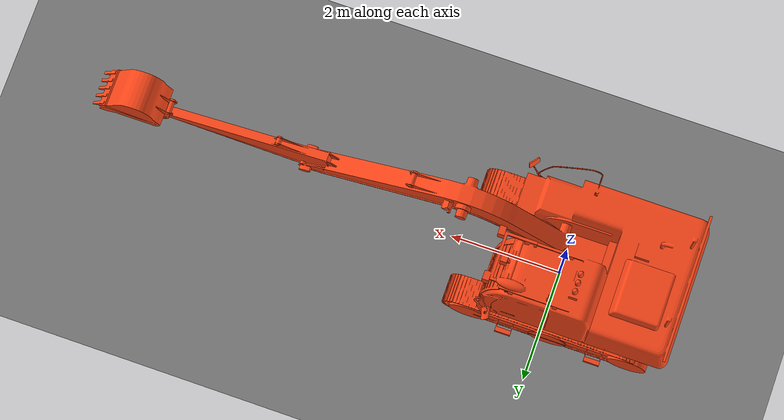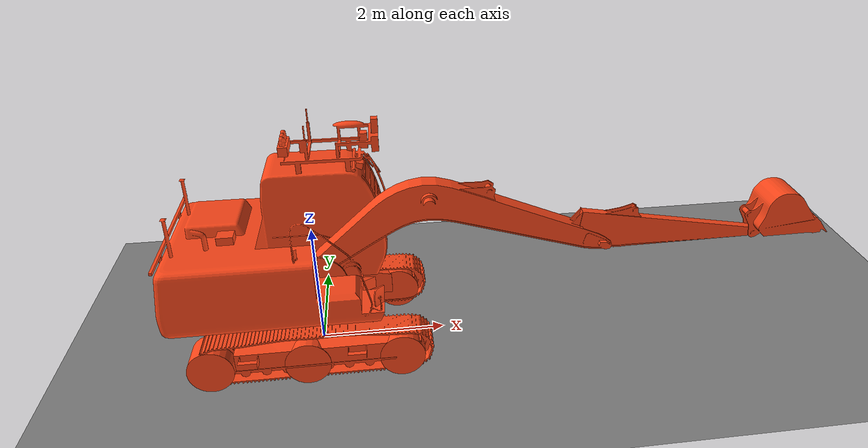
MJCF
<mujoco model="zx120">
  <default>
    <default class="robot">
      <default class="visual">
        <geom material="visualgeom" contype="0" conaffinity="0" group="2" />
      </default>
      <default class="collision">
        <geom material="collision_material" condim="3" contype="0" conaffinity="1" priority="1" group="1" solref="0.005 1" friction="1 0.01 0.01" />
        <equality solimp="0.99 0.999 1e-05" solref="0.005 1" />
      </default>
    </default>
  </default>

  <compiler angle="radian" />
  <option gravity="0 0 -0.0981" />

  <asset>
    <material name="default_material" rgba="0.7 0.7 0.7 1" />
    <material name="collision_material" rgba="1.0 0.28 0.1 0.9" />
    <mesh name="zx120-crawler" file="./zx120_description/meshes/zx120-crawler.stl" />
    <mesh name="zx120-body" file="./zx120_description/meshes/zx120-body.stl" />
    <mesh name="zx120-boom" file="./zx120_description/meshes/zx120-boom.stl" />
    <mesh name="zx120-arm" file="./zx120_description/meshes/zx120-arm.stl" />
    <mesh name="zx120-bucket" file="./zx120_description/meshes/zx120-bucket.stl" />
  </asset>

  <worldbody>
    <light pos="0 0 15"/>
    <geom name="ground" type="plane" size="50 50 0.1"/>
    <body name="base_link" pos="0.00000000 0.00000000 0.00000000" quat="1 0 0 0" childclass="robot">
      <freejoint />
      <body name="track_link" pos="0 0 0.1" quat="1.0 0.0 0.0 0.0">
        <inertial pos="-0.155869 0 0.358402" quat="1.0 0.0 0.0 0.0" mass="1" diaginertia="1.0 1.0 1.0" />
        <geom name="track_link_collision" pos="0 0 0" quat="1 0 0 0" type="mesh" mesh="zx120-crawler" class="collision" />
        <geom name="track_link_visual" pos="0 0 0" quat="1 0 0 0" material="default_material" type="mesh" mesh="zx120-crawler" class="visual" />
        <body name="body_link" pos="0 0 1" quat="1.0 0.0 0.0 0.0">
          <joint name="swing_joint" type="hinge" ref="0.0" axis="0 0 2" />
          <inertial pos="-0.501522 0 1.191169" quat="1.0 0.0 0.0 0.0" mass="0.03" diaginertia="1.0 1.0 1.0" />
          <geom name="body_link_collision" pos="0 0 0" quat="1.0 0.0 0.0 0.0" type="mesh" mesh="zx120-body" class="collision" />
          <geom name="body_link_visual" pos="0 0 0" quat="1.0 0.0 0.0 0.0" material="default_material" type="mesh" mesh="zx120-body" class="visual" />
          <body name="boom_link" pos="0.14 -0.16443 0.424" quat="0.7071067811882787 0.0 0.7071067811848163 0.0">
            <joint name="boom_joint" type="hinge" ref="0.0" limited="true" range="-1.2217304764 0.767944870878" axis="0 1 0" />
            <inertial pos="2.091062 0.055029 0.975556" quat="1.0 0.0 0.0 0.0" mass="0.03" diaginertia="1.0 1.0 1.0" />
            <geom name="boom_link_collision" pos="0 0 0" quat="0.8295471813034682 0.0 -0.5584366338193358 0.0" type="mesh" mesh="zx120-boom" class="collision" />
            <geom name="boom_link_visual" pos="0 0 0" quat="0.8295471813034682 0.0 -0.5584366338193358 0.0" material="default_material" type="mesh" mesh="zx120-boom" class="visual" />
            <body name="arm_link" pos="0 0 4.6" quat="1.0 0.0 0.0 0.0">
              <joint name="arm_joint" type="hinge" ref="0.0" limited="true" range="0.523598775598 2.65290046303" axis="0 1 0" />
              <inertial pos="0.305996 0.000026 -0.912806" quat="1.0 0.0 0.0 0.0" mass="0.03" diaginertia="1.0 1.0 1.0" />
              <geom name="arm_link_collision" pos="0 0 0" quat="-0.06914844865406194 -0.0 0.9976063813191737 -0.0" type="mesh" mesh="zx120-arm" class="collision" />
              <geom name="arm_link_visual" pos="0 0 0" quat="-0.06914844865406194 -0.0 0.9976063813191737 -0.0" material="default_material" type="mesh" mesh="zx120-arm" class="visual" />
              <body name="bucket_link" pos="0 0 2.519" quat="1.0 0.0 0.0 0.0">
                <joint name="bucket_joint" type="hinge" ref="0.0" limited="true" range="-0.575958653158 2.49582083035" axis="0 1 0" />
                <inertial pos="-0.442405 0.001740 0.247894" quat="1.0 0.0 0.0 0.0" mass="0.03" diaginertia="1.0 1.0 1.0" />
                <geom name="bucket_link_collision" pos="0 0 0" quat="0.9305076219123143 0.0 0.36627252908604757 0.0" type="mesh" mesh="zx120-bucket" class="collision" />
                <geom name="bucket_link_visual" pos="0 0 0" quat="0.9305076219123143 0.0 0.36627252908604757 0.0" material="default_material" type="mesh" mesh="zx120-bucket" class="visual" />
                <body name="bucket_end_link" pos="0 0 1.23" quat="0.9063077870366848 0.0 0.4226182617406248 0.0">
                  <inertial pos="0 0 0" quat="1.0 0.0 0.0 0.0" mass="1.0e-03" diaginertia="0.001 0.001 0.001" />
                  <geom name="bucket_end_link_visual" pos="0 0 0" quat="1.0 0.0 0.0 0.0" material="default_material" type="box" size="0.0005 0.0005 0.0005" class="visual" />
                </body>
              </body>
            </body>
          </body>
        </body>
      </body>
      <body name="left_middle_wheel_link" pos="-0.155869 1 0.35" quat="0.7071067811865476 -0.7071067811865475 0.0 0.0">
        <joint name="left_middle_wheel_joint" type="hinge" ref="0.0" axis="0 0 1" />
        <inertial pos="0 0 0" quat="1.0 0.0 0.0 0.0" mass="10" diaginertia="5.0 5.0 5.0" />
        <geom name="left_middle_wheel_link_collision" pos="0 0 0" quat="1 0 0 0" type="cylinder" size="0.35 0.25" class="collision" friction="0.7 0.005 0.0001" solimp="0.9 0.95 0.001" solref="0.02 1" />
      </body>
      <body name="left_front_wheel_link" pos="1.284131 1 0.35" quat="0.7071067811865476 -0.7071067811865475 0.0 0.0">
        <joint name="left_front_wheel_joint" type="hinge" ref="0.0" axis="0 0 1" />
        <inertial pos="0 0 0" quat="1.0 0.0 0.0 0.0" mass="10" diaginertia="5.0 5.0 5.0" />
        <geom name="left_front_wheel_link_collision" pos="0 0 0" quat="1 0 0 0" type="cylinder" size="0.35 0.25" class="collision" friction="0.7 0.005 0.0001" solimp="0.9 0.95 0.001" solref="0.02 1" />
      </body>
      <body name="left_rear_wheel_link" pos="-1.595869 1 0.35" quat="0.7071067811865476 -0.7071067811865475 0.0 0.0">
        <joint name="left_rear_wheel_joint" type="hinge" ref="0.0" axis="0 0 1" />
        <inertial pos="0 0 0" quat="1.0 0.0 0.0 0.0" mass="10" diaginertia="5.0 5.0 5.0" />
        <geom name="left_rear_wheel_link_collision" pos="0 0 0" quat="1 0 0 0" type="cylinder" size="0.35 0.25" class="collision" friction="0.7 0.005 0.0001" solimp="0.9 0.95 0.001" solref="0.02 1" />
      </body>
      <body name="right_middle_wheel_link" pos="-0.155869 -1 0.35" quat="0.7071067811865476 -0.7071067811865475 0.0 0.0">
        <joint name="right_middle_wheel_joint" type="hinge" ref="0.0" axis="0 0 1" />
        <inertial pos="0 0 0" quat="1.0 0.0 0.0 0.0" mass="10" diaginertia="5.0 5.0 5.0" />
        <geom name="right_middle_wheel_link_collision" pos="0 0 0" quat="1 0 0 0" type="cylinder" size="0.35 0.25" class="collision" friction="0.7 0.005 0.0001" solimp="0.9 0.95 0.001" solref="0.02 1" />
      </body>
      <body name="right_front_wheel_link" pos="1.284131 -1 0.35" quat="0.7071067811865476 -0.7071067811865475 0.0 0.0">
        <joint name="right_front_wheel_joint" type="hinge" ref="0.0" axis="0 0 1" />
        <inertial pos="0 0 0" quat="1.0 0.0 0.0 0.0" mass="10" diaginertia="5.0 5.0 5.0" />
        <geom name="right_front_wheel_link_collision" pos="0 0 0" quat="1 0 0 0" type="cylinder" size="0.35 0.25" class="collision" friction="0.7 0.005 0.0001" solimp="0.9 0.95 0.001" solref="0.02 1" />
      </body>
      <body name="right_rear_wheel_link" pos="-1.595869 -1 0.35" quat="0.7071067811865476 -0.7071067811865475 0.0 0.0">
        <joint name="right_rear_wheel_joint" type="hinge" ref="0.0" axis="0 0 1" />
        <inertial pos="0 0 0" quat="1.0 0.0 0.0 0.0" mass="10" diaginertia="5.0 5.0 5.0" />
        <geom name="right_rear_wheel_link_collision" pos="0 0 0" quat="1 0 0 0" type="cylinder" size="0.35 0.25" class="collision" friction="0.7 0.005 0.0001" solimp="0.9 0.95 0.001" solref="0.02 1" />
      </body>
      <site name="base_link_site" pos="0 0 0" quat="1 0 0 0" />
    </body>
  </worldbody>

  <actuator>
    <velocity name="swing_joint_ctrl" joint="swing_joint" gear="1" ctrlrange="-0.3 0.3"  />
    <velocity name="boom_joint_ctrl" joint="boom_joint" gear="1" forcerange="-500 500" ctrlrange="-6.159937255 6.159937255" />
    <velocity name="arm_joint_ctrl" joint="arm_joint" gear="1" forcerange="-1 1" ctrlrange="-0.5 0.5" />
    <velocity name="bucket_joint_ctrl" joint="bucket_joint" gear="1" forcerange="-1 1" ctrlrange="-0.5 0.5" />
    <velocity name="left_middle_wheel_joint_ctrl" joint="left_middle_wheel_joint" gear="1" ctrlrange="-0.5 0.5" />
    <velocity name="left_front_wheel_joint_ctrl" joint="left_front_wheel_joint" gear="1" ctrlrange="-0.5 0.5" />
    <velocity name="left_rear_wheel_joint_ctrl" joint="left_rear_wheel_joint" gear="1" ctrlrange="-0.5 0.5" />
    <velocity name="right_middle_wheel_joint_ctrl" joint="right_middle_wheel_joint" gear="1" ctrlrange="-0.5 0.5" />
    <velocity name="right_front_wheel_joint_ctrl" joint="right_front_wheel_joint" gear="1" ctrlrange="-0.5 0.5" />
    <velocity name="right_rear_wheel_joint_ctrl" joint="right_rear_wheel_joint" gear="1" ctrlrange="-0.5 0.5" />
  </actuator>

  <contact>
    <exclude body1="track_link" body2="left_middle_wheel_link" />
    <exclude body1="track_link" body2="left_front_wheel_link" />
    <exclude body1="track_link" body2="left_rear_wheel_link" />
    <exclude body1="track_link" body2="right_middle_wheel_link" />
    <exclude body1="track_link" body2="right_middle_wheel_link" />
    <exclude body1="track_link" body2="right_middle_wheel_link" />
    <exclude body1="track_link" body2="body_link" />
    <exclude body1="body_link" body2="boom_link" />
    <exclude body1="boom_link" body2="arm_link" />
    <exclude body1="arm_link" body2="bucket_link" />
  </contact>

  <sensor>
    <jointactuatorfrc  name="boom_joint_force" joint="boom_joint" />
    <framepos name="base_link_site_pos" objtype="site" objname="base_link_site" />
    <framequat name="base_link_site_quat" objtype="site" objname="base_link_site" />
    <framelinvel name="base_link_site_linvel" objtype="site" objname="base_link_site" />
    <frameangvel name="base_link_site_angvel" objtype="site" objname="base_link_site" />
    <velocimeter name="base_link_site_vel" site="base_link_site" />
    <framepos name="bucket_end_pos" objtype="body" objname="bucket_end_link" reftype="site" refname="base_link_site" />
    <framequat  name="bucket_end_quat" objtype="body" objname="bucket_end_link" reftype="site" refname="base_link_site" />
  </sensor>
</mujoco>
